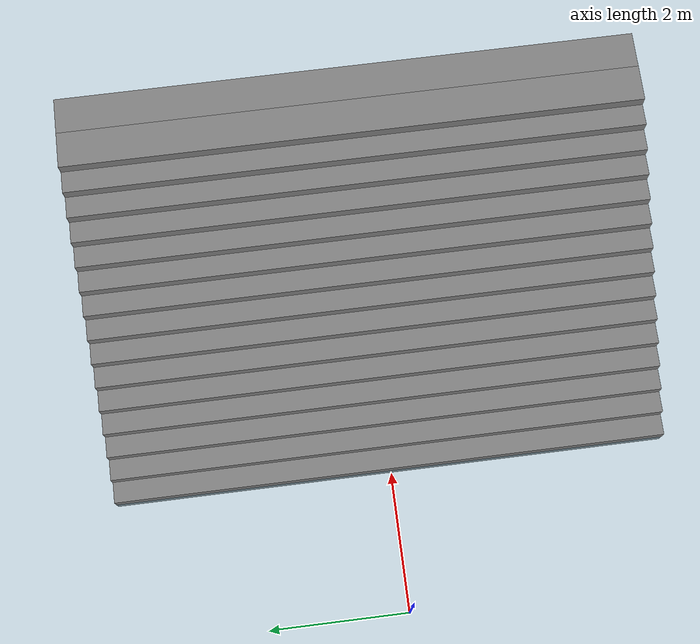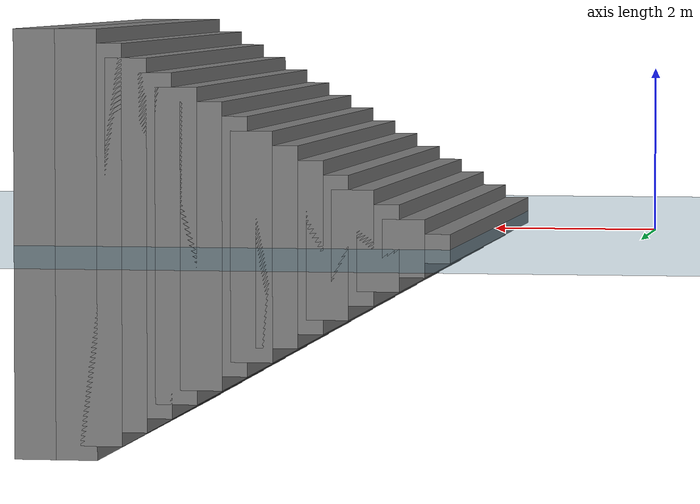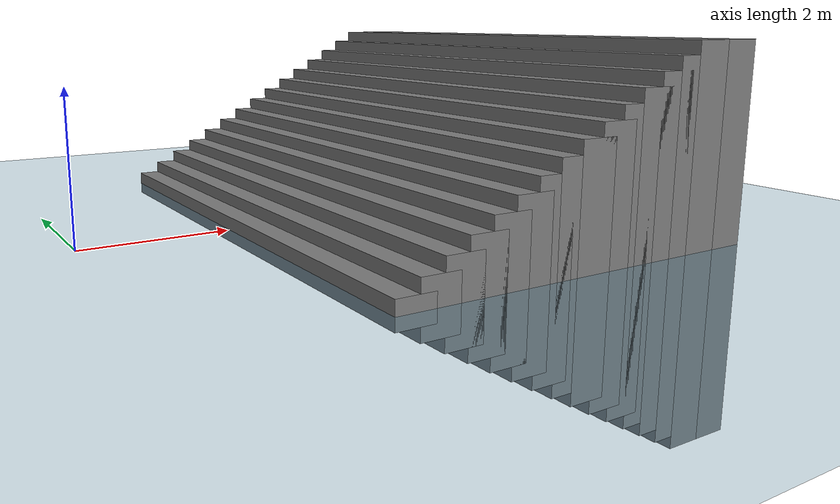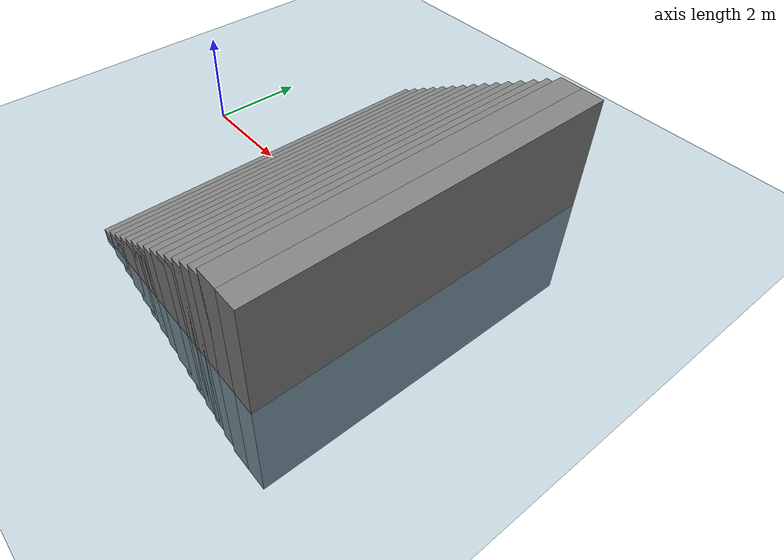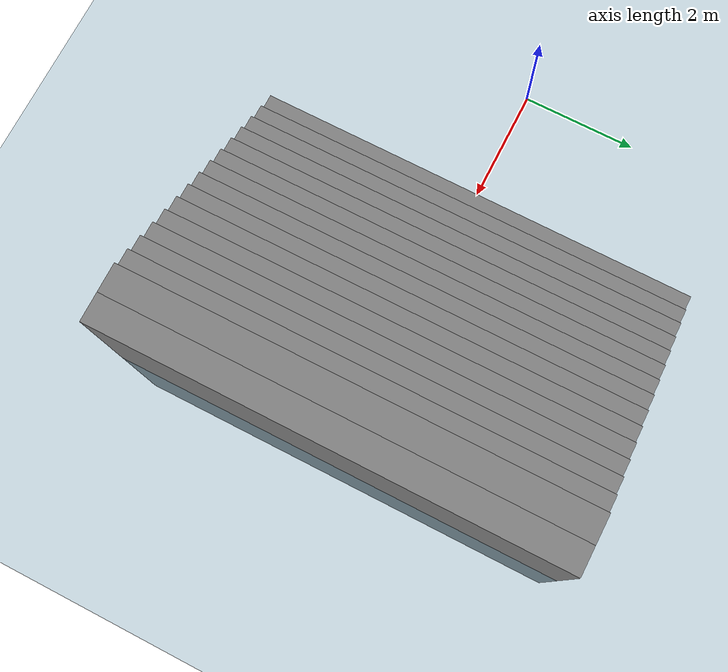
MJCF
<mujoco model="bx scene">

  <statistic center="0 0 0.6" extent="1.3"/>

  <visual>
    <headlight diffuse="0.5 0.5 0.5" ambient="0.2 0.2 0.2" specular="0.9 0.9 0.9"/>
    <rgba haze="0.15 0.25 0.35 1"/>
    <global azimuth="200" elevation="-20"/>
  </visual>

  <asset>
    <texture type="skybox" builtin="flat" rgb1="0.3 0.5 0.7" rgb2="0 0 0" width="512" height="3072"/>
    <texture type="2d" name="groundplane" builtin="checker" mark="edge" rgb1="0.3 0.52 0.63" rgb2="0.3 0.52 0.63" markrgb="1 1 1" width="300" height="300"/>
    <material name="groundplane" texture="groundplane" texuniform="true" texrepeat="5 5" reflectance="0.2"/>

    <texture name="texplane" type="2d" builtin="checker" rgb1=".2 .3 .4" rgb2=".1 0.15 0.2"
        width="512" height="512" mark="cross" markrgb=".8 .8 .8"/>
    <texture name="texplane2" type="2d" builtin="checker" rgb1="1 0.3137 0.1843" rgb2="0.0 0.30196 0.38039"
        width="512" height="512" mark="cross" markrgb=".8 .8 .8"/>
    <material name="matplane" reflectance="0." texture="texplane" texrepeat="1 1" texuniform="true"/>
    <material name="matplane2" reflectance="0.1" texture="texplane2" texrepeat="1 1" texuniform="true"/>
    <hfield name='hf0' nrow='200' ncol='200' size="10 5 0.2 .1"/>
  </asset>

  <worldbody>
    <light pos="1 0 3.5" dir="0 0 -1" directional="true"/>
    <geom name="floor" size="0 0 0.05" type="plane" material="groundplane" group="0"/>

    <!-- ===================== 上楼梯（数量翻倍）===================== -->
<geom pos="2.3 0 0.0" type="box" size="0.25 4 0.17" quat="1.0 0 0 0"/>
<geom pos="2.6 0 0.0" type="box" size="0.25 4 0.34" quat="1.0 0 0 0"/>
<geom pos="2.9 0 0.0" type="box" size="0.25 4 0.51" quat="1.0 0 0 0"/>
<geom pos="3.2 0 0.0" type="box" size="0.25 4 0.68" quat="1.0 0 0 0"/>
<geom pos="3.5 0 0.0" type="box" size="0.25 4 0.85" quat="1.0 0 0 0"/>
<geom pos="3.8 0 0.0" type="box" size="0.25 4 1.02" quat="1.0 0 0 0"/>
<geom pos="4.1 0 0.0" type="box" size="0.25 4 1.19" quat="1.0 0 0 0"/>
<geom pos="4.4 0 0.0" type="box" size="0.25 4 1.36" quat="1.0 0 0 0"/>
<geom pos="4.7 0 0.0" type="box" size="0.25 4 1.53" quat="1.0 0 0 0"/>
<geom pos="5.0 0 0.0" type="box" size="0.25 4 1.70" quat="1.0 0 0 0"/>
<geom pos="5.3 0 0.0" type="box" size="0.25 4 1.87" quat="1.0 0 0 0"/>
<geom pos="5.6 0 0.0" type="box" size="0.25 4 2.04" quat="1.0 0 0 0"/>
<geom pos="5.9 0 0.0" type="box" size="0.25 4 2.21" quat="1.0 0 0 0"/>
<geom pos="6.2 0 0.0" type="box" size="0.25 4 2.38" quat="1.0 0 0 0"/>
<geom pos="6.5 0 0.0" type="box" size="0.25 4 2.55" quat="1.0 0 0 0"/>

    <geom pos="7 0 0.0" type="box" size="0.25 4 2.55" quat="1.0 0 0 0"/>

    <!-- ===================== 下楼梯（数量翻倍）===================== -->

    <!-- ===================== 上楼梯（数量翻倍）===================== -->

  </worldbody>
</mujoco>
